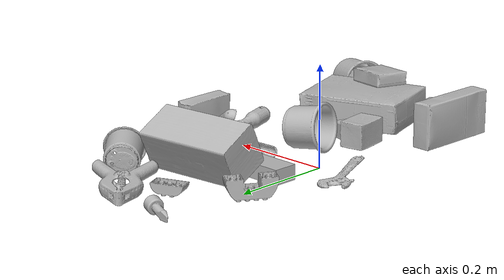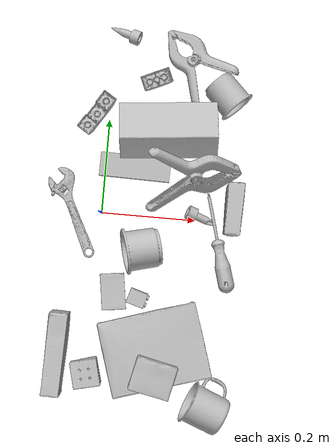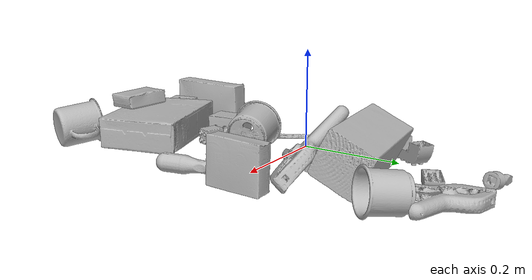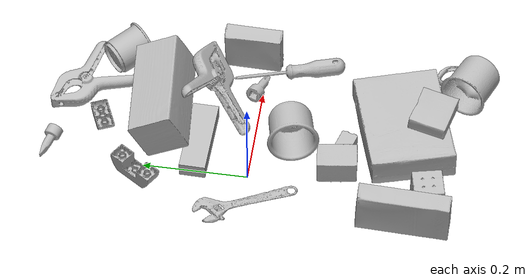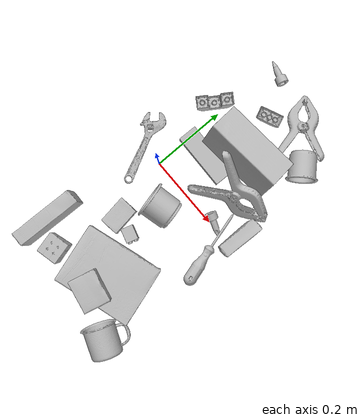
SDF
<sdf version="1.4">
  <world name="default">
    <light name="light1" type="point">
      <pose>0 0 1 0 0 0</pose>
      <diffuse>3 3 3 1</diffuse>
      <specular>3 3 3 1</specular>
    </light>
    <light name="light2" type="point">
      <pose>0 0.5 2 0 0 0</pose>
      <diffuse>1 1 1 1</diffuse>
      <specular>1 1 1 1</specular>
    </light>
    <light name="light3" type="point">
      <pose>0 0.5 2 0 0 0</pose>
      <diffuse>3 3 3 1</diffuse>
      <specular>3 3 3 1</specular>
    </light>
    <scene>
      <ambient>0.7 0.7 0.7</ambient>
    </scene>
    <model name="box21">
      <link name="link_box21">
        <collision name="default">
          <geometry>
            <mesh>
              <uri>model://cracker_box/collision_meshes/collision.obj</uri>
              <scale>1.0 1.0 1.0</scale>
            </mesh>
          </geometry>
          <surface>
            <friction>
              <ode>
                <mu>0.5</mu>
                <mu2>0.5</mu2>
              </ode>
            </friction>
          <contact>
        <ode>
            <max_vel>0</max_vel>
            <min_depth>0.0001</min_depth>
            <kp>1e8</kp>
        </ode>
    </contact></surface>
        </collision>
        <visual name="default">
          <geometry>
            <mesh>
              <uri>model://cracker_box/visual_meshes/visual.dae</uri>
              <scale>1.0 1.0 1.0</scale>
            </mesh>
          </geometry>
        </visual>
        <inertial>
          <mass>1.391977071762085</mass>
          <pose>0.0009464159375056624 0.0002543424488976598 -0.0017029533628374338 -0.000316207597302205 -0.011106489600460226 0.002546794768991959</pose>
          <inertia>
            <ixx>0.0035405685</ixx>
            <iyy>0.0058461735</iyy>
            <izz>0.008343027</izz>
            <ixy>0</ixy>
            <ixz>0</ixz>
            <iyz>0</iyz>
          </inertia>
        </inertial>
      </link>
      <pose>0.13500194251537323 -0.27970096468925476 0.035531576722860336 3.1371845888243084 -0.01654586958809582 -2.8393558582885983</pose>
    </model>
    <model name="box22">
      <link name="link_box22">
        <collision name="default">
          <geometry>
            <mesh>
              <uri>model://pudding_box/collision_meshes/collision.obj</uri>
              <scale>1.0 1.0 1.0</scale>
            </mesh>
          </geometry>
          <surface>
            <friction>
              <ode>
                <mu>0.5</mu>
                <mu2>0.5</mu2>
              </ode>
            </friction>
          <contact>
        <ode>
            <max_vel>0</max_vel>
            <min_depth>0.0001</min_depth>
            <kp>1e8</kp>
        </ode>
    </contact></surface>
        </collision>
        <visual name="default">
          <geometry>
            <mesh>
              <uri>model://pudding_box/visual_meshes/visual.dae</uri>
              <scale>1.0 1.0 1.0</scale>
            </mesh>
          </geometry>
        </visual>
        <inertial>
          <mass>0.30066633224487305</mass>
          <pose>0.0004894821904599667 0.0008067885646596551 -0.0005188827635720372 0.005213102250656644 -0.006603798267444238 0.020079828885202117</pose>
          <inertia>
            <ixx>0.0003398878</ixx>
            <iyy>0.00022867892</iyy>
            <izz>0.00050193316</izz>
            <ixy>0</ixy>
            <ixz>0</ixz>
            <iyz>0</iyz>
          </inertia>
        </inertial>
      </link>
      <pose>0.278850793838501 0.02935905195772648 0.04517781361937523 -0.4108772598276592 1.549445081556812 -0.4225641706610591</pose>
    </model>
    <model name="box23">
      <link name="link_box23">
        <collision name="default">
          <geometry>
            <mesh>
              <uri>model://rubiks_cube/collision_meshes/collision.obj</uri>
              <scale>1.0 1.0 1.0</scale>
            </mesh>
          </geometry>
          <surface>
            <friction>
              <ode>
                <mu>0.5</mu>
                <mu2>0.5</mu2>
              </ode>
            </friction>
          <contact>
        <ode>
            <max_vel>0</max_vel>
            <min_depth>0.0001</min_depth>
            <kp>1e8</kp>
        </ode>
    </contact></surface>
        </collision>
        <visual name="default">
          <geometry>
            <mesh>
              <uri>model://rubiks_cube/visual_meshes/visual.dae</uri>
              <scale>1.0 1.0 1.0</scale>
            </mesh>
          </geometry>
        </visual>
        <inertial>
          <mass>0.26383036375045776</mass>
          <pose>2.6721041649580002e-05 5.256966323941015e-05 -7.264316082000732e-06 -0.054671492146459166 -0.0981403456898064 -0.03445706250673431</pose>
          <inertia>
            <ixx>0.000145784</ixx>
            <iyy>0.00014510413</iyy>
            <izz>0.00014699204</izz>
            <ixy>0</ixy>
            <ixz>0</ixz>
            <iyz>0</iyz>
          </inertia>
        </inertial>
      </link>
      <pose>-0.005131520330905914 -0.34115540981292725 0.02920558676123619 -1.9827304170717754 -1.552938059374221 -0.9118231014658068</pose>
    </model>
    <model name="cup1">
      <link name="link_cup1">
        <collision name="default">
          <geometry>
            <mesh>
              <uri>model://i_cups/collision_meshes/collision.obj</uri>
              <scale>1.0 1.0 1.0</scale>
            </mesh>
          </geometry>
          <surface>
            <friction>
              <ode>
                <mu>0.5</mu>
                <mu2>0.5</mu2>
              </ode>
            </friction>
          <contact>
        <ode>
            <max_vel>0</max_vel>
            <min_depth>0.0001</min_depth>
            <kp>1e8</kp>
        </ode>
    </contact></surface>
        </collision>
        <visual name="default">
          <geometry>
            <mesh>
              <uri>model://i_cups/visual_meshes/visual.dae</uri>
              <scale>1.0 1.0 1.0</scale>
            </mesh>
          </geometry>
        </visual>
        <inertial>
          <mass>0.07817669957876205</mass>
          <pose>0.00011240140884183347 0.00016797371790744364 -0.0008579030982218683 -0.02898336998566683 -0.039872909189422004 -0.34590568894983</pose>
          <inertia>
            <ixx>0.000108236774</ixx>
            <iyy>0.000109190434</iyy>
            <izz>0.00012097212</izz>
            <ixy>0</ixy>
            <ixz>0</ixz>
            <iyz>0</iyz>
          </inertia>
        </inertial>
      </link>
      <pose>0.09229861199855804 -0.07005602866411209 0.04474679380655289 0.014367373306938545 1.443673418681839 -2.887380225067187</pose>
    </model>
    <model name="cup2">
      <link name="link_cup2">
        <collision name="default">
          <geometry>
            <mesh>
              <uri>model://f_cups/collision_meshes/collision.obj</uri>
              <scale>1.0 1.0 1.0</scale>
            </mesh>
          </geometry>
          <surface>
            <friction>
              <ode>
                <mu>0.5</mu>
                <mu2>0.5</mu2>
              </ode>
            </friction>
          <contact>
        <ode>
            <max_vel>0</max_vel>
            <min_depth>0.0001</min_depth>
            <kp>1e8</kp>
        </ode>
    </contact></surface>
        </collision>
        <visual name="default">
          <geometry>
            <mesh>
              <uri>model://f_cups/visual_meshes/visual.dae</uri>
              <scale>1.0 1.0 1.0</scale>
            </mesh>
          </geometry>
        </visual>
        <inertial>
          <mass>0.06179655343294144</mass>
          <pose>-0.003171469084918499 -0.0006240077782422304 -0.0036555363330990076 0.786228783809594 -0.26079147583364887 -0.18237327348602217</pose>
          <inertia>
            <ixx>5.8090412e-05</ixx>
            <iyy>6.0937502e-05</iyy>
            <izz>6.3437656e-05</izz>
            <ixy>0</ixy>
            <ixz>0</ixz>
            <iyz>0</iyz>
          </inertia>
        </inertial>
      </link>
      <pose>0.2449563443660736 0.2699987590312958 0.03703106939792633 1.3152936707162717 -1.178305169923333 0.9975764170192205</pose>
    </model>
    <model name="box11">
      <link name="link_box11">
        <collision name="default">
          <geometry>
            <mesh>
              <uri>model://jenga/collision_meshes/collision.obj</uri>
              <scale>1.0 1.0 1.0</scale>
            </mesh>
          </geometry>
          <surface>
            <friction>
              <ode>
                <mu>0.5</mu>
                <mu2>0.5</mu2>
              </ode>
            </friction>
          <contact>
        <ode>
            <max_vel>0</max_vel>
            <min_depth>0.0001</min_depth>
            <kp>1e8</kp>
        </ode>
    </contact></surface>
        </collision>
        <visual name="default">
          <geometry>
            <mesh>
              <uri>model://jenga/visual_meshes/visual.dae</uri>
              <scale>1.0 1.0 1.0</scale>
            </mesh>
          </geometry>
        </visual>
        <inertial>
          <mass>0.2841220796108246</mass>
          <pose>-2.5028555228345795e-07 -0.00010250010382151231 -4.0923401684267446e-05 0.0 -7.34215461761844e-07 0.0</pose>
          <inertia>
            <ixx>7.8623474e-05</ixx>
            <iyy>0.00053275056</iyy>
            <izz>0.0005687565</izz>
            <ixy>0</ixy>
            <ixz>0</ixz>
            <iyz>0</iyz>
          </inertia>
        </inertial>
      </link>
      <pose>0.06336360424757004 0.10267692059278488 0.014998205937445164 0.00020882042110790042 6.932816443835651e-06 -0.02090119028382625</pose>
    </model>
    <model name="box12">
      <link name="link_box12">
        <collision name="default">
          <geometry>
            <mesh>
              <uri>model://wood_block/collision_meshes/collision.obj</uri>
              <scale>1.0 1.0 1.0</scale>
            </mesh>
          </geometry>
          <surface>
            <friction>
              <ode>
                <mu>0.5</mu>
                <mu2>0.5</mu2>
              </ode>
            </friction>
          <contact>
        <ode>
            <max_vel>0</max_vel>
            <min_depth>0.0001</min_depth>
            <kp>1e8</kp>
        </ode>
    </contact></surface>
        </collision>
        <visual name="default">
          <geometry>
            <mesh>
              <uri>model://wood_block/visual_meshes/visual.dae</uri>
              <scale>1.0 1.0 1.0</scale>
            </mesh>
          </geometry>
        </visual>
        <inertial>
          <mass>1.792885661125183</mass>
          <pose>-5.813315510749817e-06 -0.0005708095268346369 0.0002640858292579651 -0.0522099864925601 -0.005192695938411627 -0.006861379223067069</pose>
          <inertia>
            <ixx>0.0023991528</ixx>
            <iyy>0.007578924</iyy>
            <izz>0.007550574</izz>
            <ixy>0</ixy>
            <ixz>0</ixz>
            <iyz>0</iyz>
          </inertia>
        </inertial>
      </link>
      <pose>0.12744735181331635 0.18294526636600494 0.058018337935209274 1.129112645929271 -0.0031252582994363946 0.09720122362470822</pose>
    </model>
    <model name="box13">
      <link name="link_box13">
        <collision name="default">
          <geometry>
            <mesh>
              <uri>model://sugar_box/collision_meshes/collision.obj</uri>
              <scale>1.0 1.0 1.0</scale>
            </mesh>
          </geometry>
          <surface>
            <friction>
              <ode>
                <mu>0.5</mu>
                <mu2>0.5</mu2>
              </ode>
            </friction>
          <contact>
        <ode>
            <max_vel>0</max_vel>
            <min_depth>0.0001</min_depth>
            <kp>1e8</kp>
        </ode>
    </contact></surface>
        </collision>
        <visual name="default">
          <geometry>
            <mesh>
              <uri>model://sugar_box/visual_meshes/visual.dae</uri>
              <scale>1.0 1.0 1.0</scale>
            </mesh>
          </geometry>
        </visual>
        <inertial>
          <mass>0.8825364708900452</mass>
          <pose>0.0010343727190047503 3.8491099985549226e-05 -0.00036364805418998003 -0.0004046260965456432 0.0010506635219437153 0.002615379021860657</pose>
          <inertia>
            <ixx>0.0007353271</ixx>
            <iyy>0.0023767278</iyy>
            <izz>0.002845227</izz>
            <ixy>0</ixy>
            <ixz>0</ixz>
            <iyz>0</iyz>
          </inertia>
        </inertial>
      </link>
      <pose>-0.0700768530368805 -0.3026779592037201 0.046450089663267136 1.5710199140904217 -4.001356369140857e-05 1.5400025976243457</pose>
    </model>
    <model name="box14">
      <link name="link_box14">
        <collision name="default">
          <geometry>
            <mesh>
              <uri>model://gelatin_box/collision_meshes/collision.obj</uri>
              <scale>1.0 1.0 1.0</scale>
            </mesh>
          </geometry>
          <surface>
            <friction>
              <ode>
                <mu>0.5</mu>
                <mu2>0.5</mu2>
              </ode>
            </friction>
          <contact>
        <ode>
            <max_vel>0</max_vel>
            <min_depth>0.0001</min_depth>
            <kp>1e8</kp>
        </ode>
    </contact></surface>
        </collision>
        <visual name="default">
          <geometry>
            <mesh>
              <uri>model://gelatin_box/visual_meshes/visual.dae</uri>
              <scale>1.0 1.0 1.0</scale>
            </mesh>
          </geometry>
        </visual>
        <inertial>
          <mass>0.13771659135818481</mass>
          <pose>0.0004319618456065655 0.00011156871914863586 -0.0003640321083366871 -0.0010503722043797578 -0.004755819155943452 0.016440555746729004</pose>
          <inertia>
            <ixx>9.721668e-05</ixx>
            <iyy>6.944137e-05</iyy>
            <izz>0.00014798543</izz>
            <ixy>0</ixy>
            <ixz>0</ixz>
            <iyz>0</iyz>
          </inertia>
        </inertial>
      </link>
      <pose>0.13775160908699036 -0.33369681239128113 0.0861763134598732 0.0488519410112185 -0.05850973984763938 1.3385441954056907</pose>
    </model>
    <model name="cup15">
      <link name="link_cup15">
        <collision name="default">
          <geometry>
            <mesh>
              <uri>model://mug/collision_meshes/collision.obj</uri>
              <scale>1.0 1.0 1.0</scale>
            </mesh>
          </geometry>
          <surface>
            <friction>
              <ode>
                <mu>0.5</mu>
                <mu2>0.5</mu2>
              </ode>
            </friction>
          <contact>
        <ode>
            <max_vel>0</max_vel>
            <min_depth>0.0001</min_depth>
            <kp>1e8</kp>
        </ode>
    </contact></surface>
        </collision>
        <visual name="default">
          <geometry>
            <mesh>
              <uri>model://mug/visual_meshes/visual.dae</uri>
              <scale>1.0 1.0 1.0</scale>
            </mesh>
          </geometry>
        </visual>
        <inertial>
          <mass>0.09286905825138092</mass>
          <pose>0.009571668691933155 0.0008143252343870699 -0.010947328992187977 -0.12983168029791675 0.08737751579099198 0.05507277032354666</pose>
          <inertia>
            <ixx>9.2248694e-05</ixx>
            <iyy>0.00010303637</iyy>
            <izz>0.00011916295</izz>
            <ixy>0</ixy>
            <ixz>0</ixz>
            <iyz>0</iyz>
          </inertia>
        </inertial>
      </link>
      <pose>0.257107138633728 -0.3851979970932007 0.041029155254364014 1.485377367704505 -0.1359102438663972 -1.9556177458226154</pose>
    </model>
    <model name="toy1">
      <link name="link_toy1">
        <collision name="default">
          <geometry>
            <mesh>
              <uri>model://e_toy_airplane/collision_meshes/collision.obj</uri>
              <scale>1.0 1.0 1.0</scale>
            </mesh>
          </geometry>
          <surface>
            <friction>
              <ode>
                <mu>0.5</mu>
                <mu2>0.5</mu2>
              </ode>
            </friction>
          <contact>
        <ode>
            <max_vel>0</max_vel>
            <min_depth>0.0001</min_depth>
            <kp>1e8</kp>
        </ode>
    </contact></surface>
        </collision>
        <visual name="default">
          <geometry>
            <mesh>
              <uri>model://e_toy_airplane/visual_meshes/visual.dae</uri>
              <scale>1.0 1.0 1.0</scale>
            </mesh>
          </geometry>
        </visual>
        <inertial>
          <mass>0.023911256343126297</mass>
          <pose>0.00011740469199139625 -2.2482965505332686e-05 -0.011187205091118813 0.005518515901869279 0.009228280443904262 0.15041685177791278</pose>
          <inertia>
            <ixx>7.297989e-06</ixx>
            <iyy>7.223337e-06</iyy>
            <izz>2.1933329e-06</izz>
            <ixy>0</ixy>
            <ixz>0</ixz>
            <iyz>0</iyz>
          </inertia>
        </inertial>
      </link>
      <pose>0.019518304616212845 0.3859248459339142 0.012126442044973373 -1.752793844098929 -0.20232418050964437 1.3011332724554323</pose>
    </model>
    <model name="toy2">
      <link name="link_toy2">
        <collision name="default">
          <geometry>
            <mesh>
              <uri>model://e_lego_duplo/collision_meshes/collision.obj</uri>
              <scale>1.0 1.0 1.0</scale>
            </mesh>
          </geometry>
          <surface>
            <friction>
              <ode>
                <mu>0.5</mu>
                <mu2>0.5</mu2>
              </ode>
            </friction>
          <contact>
        <ode>
            <max_vel>0</max_vel>
            <min_depth>0.0001</min_depth>
            <kp>1e8</kp>
        </ode>
    </contact></surface>
        </collision>
        <visual name="default">
          <geometry>
            <mesh>
              <uri>model://e_lego_duplo/visual_meshes/visual.dae</uri>
              <scale>1.0 1.0 1.0</scale>
            </mesh>
          </geometry>
        </visual>
        <inertial>
          <mass>0.11075761169195175</mass>
          <pose>0.00032560486579313874 0.0002348541165702045 0.0019521445501595736 -0.02256776115193108 -6.825012723321977e-05 -0.007625153470106003</pose>
          <inertia>
            <ixx>2.3096625e-05</ixx>
            <iyy>9.479449e-05</iyy>
            <izz>9.231077e-05</izz>
            <ixy>0</ixy>
            <ixz>0</ixz>
            <iyz>0</iyz>
          </inertia>
        </inertial>
      </link>
      <pose>-0.026942435652017593 0.20974931120872498 0.021755311638116837 -3.125122601668059 -0.002402742487298695 -2.153038085342985</pose>
    </model>
    <model name="toy3">
      <link name="link_toy3">
        <collision name="default">
          <geometry>
            <mesh>
              <uri>model://foam_brick/collision_meshes/collision.obj</uri>
              <scale>1.0 1.0 1.0</scale>
            </mesh>
          </geometry>
          <surface>
            <friction>
              <ode>
                <mu>0.5</mu>
                <mu2>0.5</mu2>
              </ode>
            </friction>
          <contact>
        <ode>
            <max_vel>0</max_vel>
            <min_depth>0.0001</min_depth>
            <kp>1e8</kp>
        </ode>
    </contact></surface>
        </collision>
        <visual name="default">
          <geometry>
            <mesh>
              <uri>model://foam_brick/visual_meshes/visual.dae</uri>
              <scale>1.0 1.0 1.0</scale>
            </mesh>
          </geometry>
        </visual>
        <inertial>
          <mass>0.18736568093299866</mass>
          <pose>-0.0002522472059354186 0.0003458441933616996 -0.0002532101352699101 -0.2940186982087205 0.017274432871393446 -0.000744985669109422</pose>
          <inertia>
            <ixx>8.184482e-05</ixx>
            <iyy>0.00013066948</iyy>
            <izz>0.00013233014</izz>
            <ixy>0</ixy>
            <ixz>0</ixz>
            <iyz>0</iyz>
          </inertia>
        </inertial>
      </link>
      <pose>0.0390109159052372 -0.16387920081615448 0.025910690426826477 1.582820732275608 -0.0003755804492227478 1.7117364590327449</pose>
    </model>
    <model name="toy4">
      <link name="link_toy4">
        <collision name="default">
          <geometry>
            <mesh>
              <uri>model://b_lego_duplo/collision_meshes/collision.obj</uri>
              <scale>1.0 1.0 1.0</scale>
            </mesh>
          </geometry>
          <surface>
            <friction>
              <ode>
                <mu>0.5</mu>
                <mu2>0.5</mu2>
              </ode>
            </friction>
          <contact>
        <ode>
            <max_vel>0</max_vel>
            <min_depth>0.0001</min_depth>
            <kp>1e8</kp>
        </ode>
    </contact></surface>
        </collision>
        <visual name="default">
          <geometry>
            <mesh>
              <uri>model://b_lego_duplo/visual_meshes/visual.dae</uri>
              <scale>1.0 1.0 1.0</scale>
            </mesh>
          </geometry>
        </visual>
        <inertial>
          <mass>0.025353357195854187</mass>
          <pose>-0.00011053043272113428 -9.152237907983363e-06 0.001929429010488093 -0.03749469050897604 -0.02635423063131295 0.4518929125976256</pose>
          <inertia>
            <ixx>5.188755e-06</ixx>
            <iyy>5.223636e-06</iyy>
            <izz>4.623011e-06</izz>
            <ixy>0</ixy>
            <ixz>0</ixz>
            <iyz>0</iyz>
          </inertia>
        </inertial>
      </link>
      <pose>0.09269748628139496 -0.17505207657814026 0.01612117327749729 1.5723693928473208 -0.012009719510406863 1.2890530391119162</pose>
    </model>
    <model name="toy5">
      <link name="link_toy5">
        <collision name="default">
          <geometry>
            <mesh>
              <uri>model://d_toy_airplane/collision_meshes/collision.obj</uri>
              <scale>1.0 1.0 1.0</scale>
            </mesh>
          </geometry>
          <surface>
            <friction>
              <ode>
                <mu>0.5</mu>
                <mu2>0.5</mu2>
              </ode>
            </friction>
          <contact>
        <ode>
            <max_vel>0</max_vel>
            <min_depth>0.0001</min_depth>
            <kp>1e8</kp>
        </ode>
    </contact></surface>
        </collision>
        <visual name="default">
          <geometry>
            <mesh>
              <uri>model://d_toy_airplane/visual_meshes/visual.dae</uri>
              <scale>1.0 1.0 1.0</scale>
            </mesh>
          </geometry>
        </visual>
        <inertial>
          <mass>0.012228579260408878</mass>
          <pose>9.410289931111038e-05 -5.8093195548281074e-05 -0.011728097684681416 0.00026677116185868234 0.004678984415060646 0.5194210089241819</pose>
          <inertia>
            <ixx>3.6658907e-06</ixx>
            <iyy>3.6686554e-06</iyy>
            <izz>1.1067563e-06</izz>
            <ixy>0</ixy>
            <ixz>0</ixz>
            <iyz>0</iyz>
          </inertia>
        </inertial>
      </link>
      <pose>0.21313174068927765 0.005973706487566233 0.011234523728489876 1.7944116777175712 -0.19703093231429578 1.177277001002579</pose>
    </model>
    <model name="toy6">
      <link name="link_toy6">
        <collision name="default">
          <geometry>
            <mesh>
              <uri>model://a_lego_duplo/collision_meshes/collision.obj</uri>
              <scale>1.0 1.0 1.0</scale>
            </mesh>
          </geometry>
          <surface>
            <friction>
              <ode>
                <mu>0.5</mu>
                <mu2>0.5</mu2>
              </ode>
            </friction>
          <contact>
        <ode>
            <max_vel>0</max_vel>
            <min_depth>0.0001</min_depth>
            <kp>1e8</kp>
        </ode>
    </contact></surface>
        </collision>
        <visual name="default">
          <geometry>
            <mesh>
              <uri>model://a_lego_duplo/visual_meshes/visual.dae</uri>
              <scale>1.0 1.0 1.0</scale>
            </mesh>
          </geometry>
        </visual>
        <inertial>
          <mass>0.012199957855045795</mass>
          <pose>-0.00011337617615936324 0.00018517585704103112 0.0003692606114782393 -0.014116995063493705 -0.0001256559143483996 6.140869386576653e-05</pose>
          <inertia>
            <ixx>1.564132e-06</ixx>
            <iyy>3.5039989e-06</iyy>
            <izz>4.340482e-06</izz>
            <ixy>0</ixy>
            <ixz>0</ixz>
            <iyz>0</iyz>
          </inertia>
        </inertial>
      </link>
      <pose>0.09390780329704285 0.29371148347854614 0.01212480291724205 -3.1412815264863907 -0.015583508777455212 0.4104112472410561</pose>
    </model>
    <model name="hardware1">
      <link name="link_hardware1">
        <collision name="default">
          <geometry>
            <mesh>
              <uri>model://phillips_screwdriver/collision_meshes/collision.obj</uri>
              <scale>1.0 1.0 1.0</scale>
            </mesh>
          </geometry>
          <surface>
            <friction>
              <ode>
                <mu>0.5</mu>
                <mu2>0.5</mu2>
              </ode>
            </friction>
          <contact>
        <ode>
            <max_vel>0</max_vel>
            <min_depth>0.0001</min_depth>
            <kp>1e8</kp>
        </ode>
    </contact></surface>
        </collision>
        <visual name="default">
          <geometry>
            <mesh>
              <uri>model://phillips_screwdriver/visual_meshes/visual.dae</uri>
              <scale>1.0 1.0 1.0</scale>
            </mesh>
          </geometry>
        </visual>
        <inertial>
          <mass>0.06495495140552521</mass>
          <pose>-0.04777183011174202 0.0010362302418798208 -0.00045555501128546894 -0.1571888451297522 0.005850998841919991 -0.0021567342335393844</pose>
          <inertia>
            <ixx>7.63154e-06</ixx>
            <iyy>9.568614e-05</iyy>
            <izz>9.576745e-05</izz>
            <ixy>0</ixy>
            <ixz>0</ixz>
            <iyz>0</iyz>
          </inertia>
        </inertial>
      </link>
      <pose>0.2540145814418793 -0.04622139036655426 0.014776639640331268 1.4122816855580569 0.01943619833203737 1.8439134059762927</pose>
    </model>
    <model name="hardware2">
      <link name="link_hardware2">
        <collision name="default">
          <geometry>
            <mesh>
              <uri>model://extra_large_clamp/collision_meshes/collision.obj</uri>
              <scale>1.0 1.0 1.0</scale>
            </mesh>
          </geometry>
          <surface>
            <friction>
              <ode>
                <mu>0.5</mu>
                <mu2>0.5</mu2>
              </ode>
            </friction>
          <contact>
        <ode>
            <max_vel>0</max_vel>
            <min_depth>0.0001</min_depth>
            <kp>1e8</kp>
        </ode>
    </contact></surface>
        </collision>
        <visual name="default">
          <geometry>
            <mesh>
              <uri>model://extra_large_clamp/visual_meshes/visual.dae</uri>
              <scale>1.0 1.0 1.0</scale>
            </mesh>
          </geometry>
        </visual>
        <inertial>
          <mass>0.19384004175662994</mass>
          <pose>0.003232018556445837 -7.61538467486389e-05 0.00031721554114483297 0.013786997874205318 -0.000506684650300538 -0.0008936209831217155</pose>
          <inertia>
            <ixx>0.00029460518</ixx>
            <iyy>0.00050721905</iyy>
            <izz>0.0007749263</izz>
            <ixy>0</ixy>
            <ixz>0</ixz>
            <iyz>0</iyz>
          </inertia>
        </inertial>
      </link>
      <pose>0.18891294300556183 0.09295804053544998 0.044388286769390106 -2.390866493785528 0.1842532946592199 0.20899105926565267</pose>
    </model>
    <model name="hardware3">
      <link name="link_hardware3">
        <collision name="default">
          <geometry>
            <mesh>
              <uri>model://large_clamp/collision_meshes/collision.obj</uri>
              <scale>1.0 1.0 1.0</scale>
            </mesh>
          </geometry>
          <surface>
            <friction>
              <ode>
                <mu>0.5</mu>
                <mu2>0.5</mu2>
              </ode>
            </friction>
          <contact>
        <ode>
            <max_vel>0</max_vel>
            <min_depth>0.0001</min_depth>
            <kp>1e8</kp>
        </ode>
    </contact></surface>
        </collision>
        <visual name="default">
          <geometry>
            <mesh>
              <uri>model://large_clamp/visual_meshes/visual.dae</uri>
              <scale>1.0 1.0 1.0</scale>
            </mesh>
          </geometry>
        </visual>
        <inertial>
          <mass>0.09168914705514908</mass>
          <pose>0.006369357462972403 0.0003585686208680272 -0.0001839803735492751 -0.0021330784539622108 0.00967158945845961 0.026633182273159455</pose>
          <inertia>
            <ixx>8.0894904e-05</ixx>
            <iyy>0.00015362375</iyy>
            <izz>0.00022223631</izz>
            <ixy>0</ixy>
            <ixz>0</ixz>
            <iyz>0</iyz>
          </inertia>
        </inertial>
      </link>
      <pose>0.17009814083576202 0.3386339545249939 0.01850214973092079 -0.010263026724787813 0.04617697573794736 2.3201208273283767</pose>
    </model>
    <model name="hardware4">
      <link name="link_hardware4">
        <collision name="default">
          <geometry>
            <mesh>
              <uri>model://adjustable_wrench/collision_meshes/collision.obj</uri>
              <scale>1.0 1.0 1.0</scale>
            </mesh>
          </geometry>
          <surface>
            <friction>
              <ode>
                <mu>0.5</mu>
                <mu2>0.5</mu2>
              </ode>
            </friction>
          <contact>
        <ode>
            <max_vel>0</max_vel>
            <min_depth>0.0001</min_depth>
            <kp>1e8</kp>
        </ode>
    </contact></surface>
        </collision>
        <visual name="default">
          <geometry>
            <mesh>
              <uri>model://adjustable_wrench/visual_meshes/visual.dae</uri>
              <scale>1.0 1.0 1.0</scale>
            </mesh>
          </geometry>
        </visual>
        <inertial>
          <mass>0.03454793244600296</mass>
          <pose>0.03740980476140976 -0.0028968879487365484 -0.001114922808483243 -0.01447336202596381 0.006656025927011416 -0.010954184309206349</pose>
          <inertia>
            <ixx>7.0707333e-06</ixx>
            <iyy>8.275469e-05</iyy>
            <izz>8.944984e-05</izz>
            <ixy>0</ixy>
            <ixz>0</ixz>
            <iyz>0</iyz>
          </inertia>
        </inertial>
      </link>
      <pose>-0.06351098418235779 -0.0029172077775001526 0.006125042214989662 0.046759383822250526 -0.029270398877860083 2.001789906510391</pose>
    </model>
  <physics type="ode">
      <max_contacts>50</max_contacts>
      <ode>
        <solver>
          <type>quick</type>
          <iters>75</iters>
        </solver>
        <constraints>
          <contact_max_correcting_vel>0</contact_max_correcting_vel>
          <contact_surface_layer>0</contact_surface_layer>
        </constraints>
      </ode>
    </physics></world>
</sdf>
